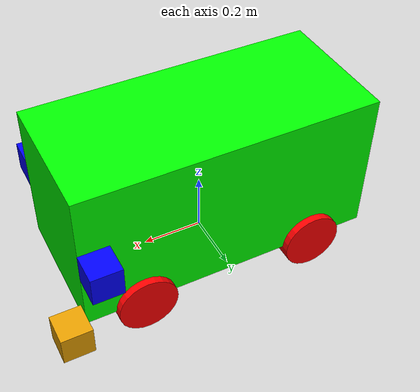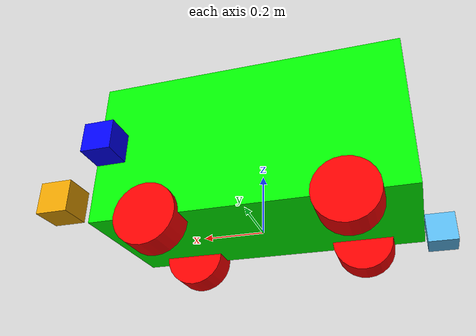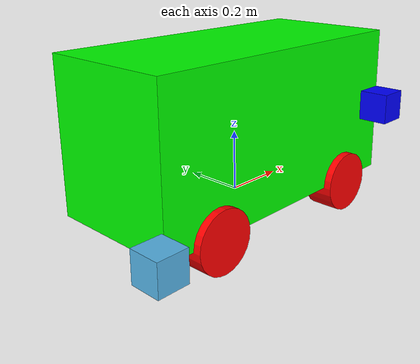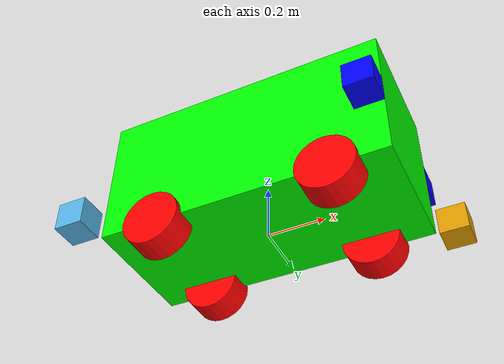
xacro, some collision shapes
<?xml version="1.0"?>
<robot xmlns:xacro="http://www.ros.org/wiki/xacro" name="SweepBOT">

  <xacro:include filename="$(find sweep_bot)/urdf/sensors/camera.xacro"/>
  <xacro:include filename="$(find sweep_bot)/urdf/actuators/wheels.xacro"/>
  <xacro:include filename="$(find sweep_bot)/urdf/sensors/MultiCamera.xacro"/>
  <xacro:include filename="$(find sweep_bot)/urdf/sensors/laser.xacro"/>

  <!-- body -->
  <xacro:property name="chasis_length" value="1.0"/>
  <xacro:property name="chasis_width" value="0.45"/>
  <xacro:property name="chasis_heigth" value="0.5"/>
  <xacro:property name="chasis_mass" value="15.0"/>
  <xacro:property name="ixx" value="${(1/12 * chasis_mass) * ((chasis_width * chasis_width) + (chasis_length * chasis_length))}"/>
  <xacro:property name="iyy" value="${(1/12 * chasis_mass) * ((chasis_heigth * chasis_heigth) + (chasis_length * chasis_length))}"/>
  <xacro:property name="izz" value="${(1/12 * chasis_mass) * ((chasis_heigth * chasis_heigth) + (chasis_width * chasis_width))}"/>

  <link name="chasis_footprint"/>

  <joint name="chasis_footprint_joint" type="fixed">
    <parent link="chasis_footprint"/>
    <child link="chasis"/>
    <origin xyz="0.0 0.0 0.25" rpy="0.0 0.0 0.0"/>
  </joint>

  <link name="chasis">
    <inertial>
      <origin xyz="0.0 0.0 0.0" rpy="0.0 1.57 0.0"/>
      <mass value="${chasis_mass}"/>
      <inertia ixx="${ixx}" ixy="0.0" ixz="0.0" iyy="${iyy}" iyz="0.0" izz="${izz}"/>
    </inertial>
    <visual name="">
      <origin xyz="0.0 0.0 0.0" rpy="0.0 0.0 0.0"/>
      <geometry>
        <box size="${chasis_length} ${chasis_width} ${chasis_heigth}"/>
      </geometry>
      <material name="">
        <color rgba="0.0 1.0 0.0 1.0"/>
      </material>
    </visual>
    <collision>
      <origin xyz="0.0 0.0 0.0" rpy="0.0 0.0 0.0"/>
      <geometry>
        <box size="${chasis_length} ${chasis_width} ${chasis_heigth}"/>
      </geometry>
    </collision>
  </link>
  <gazebo reference='chasis'>
    <material>Gazebo/Orange</material>
  </gazebo>

  <!-- wheels -->
  <xacro:wheel side="left" position="fore" flip='1' alt='1'/>
  <xacro:wheel side="right" position="fore" flip='-1' alt='1'/>
  <xacro:wheel side="left" position="aft" flip='1' alt='-1'/>
  <xacro:wheel side="right" position="aft" flip='-1' alt='-1'/>

  <!-- MULTI-CAMERA -->
  <xacro:sweeper_cams/>

  <!-- LASERS -->
  <xacro:laser_left_alt/>
  <xacro:laser_right_alt/>

  <!-- SKIP STEERING -->
  <gazebo>
    <plugin name="skid_steer_drive_controller" filename="libgazebo_ros_skid_steer_drive.so">
      <updateRate>100.0</updateRate>
      <robotNamespace>/</robotNamespace>
      <leftFrontJoint>body_wheel_left_fore_joint</leftFrontJoint>
      <rightFrontJoint>body_wheel_right_fore_joint</rightFrontJoint>
      <leftRearJoint>body_wheel_left_aft_joint</leftRearJoint>
      <rightRearJoint>body_wheel_right_aft_joint</rightRearJoint>
      <wheelSeparation>0.5</wheelSeparation>
      <wheelDiameter>0.2</wheelDiameter>
      <robotBaseFrame>chasis_footprint</robotBaseFrame>
      <torque>20</torque>
      <topicName>cmd_vel</topicName>
      <broadcastTF>true</broadcastTF>

      <commandTopic> cmd_vel </commandTopic>
      <odometryTopic> odom </odometryTopic>
      <odometryFrame> odom </odometryFrame>
      <covariance_x> 0.000100 </covariance_x>
      <covariance_y> 0.000100 </covariance_y>
      <covariance_yaw> 0.010000 </covariance_yaw>
    </plugin>
  </gazebo>

  <!-- IMU -->
  <gazebo>
    <plugin name="imu_plugin" filename="libgazebo_ros_imu.so">
      <alwaysOn>true</alwaysOn>
      <bodyName>chasis_footprint</bodyName>
      <topicName>imu</topicName>
      <serviceName>imu_service</serviceName>
      <gaussianNoise>0.0</gaussianNoise>
      <updateRate>20.0</updateRate>
    </plugin>
  </gazebo>

</robot>

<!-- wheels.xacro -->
<robot xmlns:xacro="http://www.ros.org/wiki/xacro" name="robot_name">

  <!-- WHEELS -->
  <xacro:property name="wheel_radius" value="0.1"/>
  <xacro:property name="wheel_length" value="0.1"/>
  <xacro:property name="wheel_rpy" value="1.57075 0 0"/>
  <xacro:property name="wheel_mass" value="2.0"/>
  <xacro:property name="ixx" value="${1/12 * wheel_mass * (wheel_length * wheel_length)}"/>
  <xacro:property name="izz" value="${1/12 * wheel_mass * (wheel_length * wheel_length)}"/>

  <xacro:macro name="wheel" params="side position flip alt">
    <xacro:property name="wheel_xyz" value="${alt * 0.3} ${flip * 0.2} -0.25"/>

    <link name="wheel_${side}_${position}">
      <inertial>
        <mass value="${wheel_mass}"/>
        <inertia ixx="${ixx}" ixy="0.0" ixz="0.0" iyy="0.0" iyz="0.0" izz="${izz}"/>
      </inertial>
      <visual name="">
        <origin xyz="0 0 0" rpy="${wheel_rpy}"/>
        <geometry>
          <cylinder radius="${wheel_radius}" length="${wheel_length}"/>
        </geometry>
        <material name="">
          <color rgba="1.0 0.0 0.0 1.0"/>
          <texture filename=""/>
        </material>
      </visual>
      <collision>
        <origin xyz="0 0 0" rpy="${wheel_rpy}"/>
        <geometry>
          <cylinder radius="${wheel_radius}" length="${wheel_length}"/>
        </geometry>
      </collision>
    </link>

    <gazebo reference='"wheel_${side}_${position}'>
      <material>Gazebo/Red</material>
    </gazebo>

    <joint name="body_wheel_${side}_${position}_joint" type="continuous">
      <parent link="chasis"/>
      <child link="wheel_${side}_${position}"/>
      <limit lower="0.0" upper="0.0" effort="0.0" velocity="0.0"/>
      <origin xyz="${alt * 0.3} ${flip * 0.2} -0.25" rpy="0.0 0.0 0.0"/>
      <axis xyz="0.0 1.0 0.0"/>
    </joint>
  </xacro:macro>

</robot>

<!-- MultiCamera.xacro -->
<robot xmlns:xacro="http://www.ros.org/wiki/xacro" name="robot_name">
    <xacro:macro name="sweeper_cams" params="">

        <gazebo reference="left_camera_frame">
            <sensor type="multicamera" name="stereo_camera">
                <update_rate>30.0</update_rate>
                <camera name="left_camera">
                    <horizontal_fov>1.3962634</horizontal_fov>
                    <image>
                        <width>800</width>
                        <height>800</height>
                        <format>R8G8B8</format>
                    </image>
                    <clip>
                        <near>0.02</near>
                        <far>300</far>
                    </clip>
                    <noise>
                        <type>gaussian</type>
                        <mean>0.0</mean>
                        <stddev>0.007</stddev>
                    </noise>
                </camera>
                <camera name="right_camera">
                    <pose>0 -0.07 0 0 0 0</pose>
                    <horizontal_fov>1.3962634</horizontal_fov>
                    <image>
                        <width>800</width>
                        <height>800</height>
                        <format>R8G8B8</format>
                    </image>
                    <clip>
                        <near>0.02</near>
                        <far>300</far>
                    </clip>
                    <noise>
                        <type>gaussian</type>
                        <mean>0.0</mean>
                        <stddev>0.007</stddev>
                    </noise>
                </camera>
                <plugin name="stereo_camera_controller" filename="libgazebo_ros_multicamera.so">
                    <alwaysOn>true</alwaysOn>
                    <updateRate>0.0</updateRate>
                    <cameraName>multisense_sl/camera</cameraName>
                    <imageTopicName>image_raw</imageTopicName>
                    <cameraInfoTopicName>camera_info</cameraInfoTopicName>
                    <frameName>left_camera_optical_frame</frameName>
                    <hackBaseline>0.07</hackBaseline>
                    <distortionK1>0.0</distortionK1>
                    <distortionK2>0.0</distortionK2>
                    <distortionK3>0.0</distortionK3>
                    <distortionT1>0.0</distortionT1>
                    <distortionT2>0.0</distortionT2>
                </plugin>
            </sensor>
        </gazebo>

        <!-- CAMERA LEFT -->

        <link name="left_camera">
            <inertial>
                <origin xyz="0.0 0.0 0.0" rpy="0.0 0.0 0.0"/>
                <mass value="0.0"/>
                <inertia ixx="0.0" ixy="0.0" ixz="0.0" iyy="0.0" iyz="0.0" izz="0.0"/>
            </inertial>
            <visual name="">
                <origin xyz="0.0 0.0 0.0" rpy="0.0 0.0 0.0"/>
                <geometry>
                    <box size="0.1 0.1 0.1"/>
                </geometry>
                <material name="">
                    <color rgba="0.0 0.0 1.0 1.0"/>
                    <texture filename=""/>
                </material>
            </visual>
            <collision>
                <origin xyz="0.0 0.0 0.0" rpy="0.0 0.0 0.0"/>
                <geometry>
                    <box size="0.0 0.0 0.0"/>
                </geometry>
            </collision>
        </link>
        <joint name="left_camera_joint" type="fixed">
            <origin xyz="0.45 -${chasis_heigth / 1.82} 0.0" rpy="0.0 0.0 0.0"/>
            <parent link="chasis"/>
            <child link="left_camera"/>
        </joint>

        <!-- CAMERA RIGHT -->

        <link name="right_camera">
            <inertial>
                <origin xyz="0.0 0.0 0.0" rpy="0.0 0.0 0.0"/>
                <mass value="0.0"/>
                <inertia ixx="0.0" ixy="0.0" ixz="0.0" iyy="0.0" iyz="0.0" izz="0.0"/>
            </inertial>
            <visual name="">
                <origin xyz="0.0 0.0 0.0" rpy="0.0 0.0 0.0"/>
                <geometry>
                    <box size="0.1 0.1 0.1"/>
                </geometry>
                <material name="">
                    <color rgba="0.0 0.0 1.0 1.0"/>
                    <texture filename=""/>
                </material>
            </visual>
            <collision>
                <origin xyz="0.0 0.0 0.0" rpy="0.0 0.0 0.0"/>
                <geometry>
                    <box size="0.0 0.0 0.0"/>
                </geometry>
            </collision>
        </link>
        <joint name="right_camera_joint" type="fixed">
            <origin xyz="0.45 ${chasis_heigth / 1.82} 0.0" rpy="0.0 0.0 0.0"/>
            <parent link="chasis"/>
            <child link="right_camera"/>
        </joint>

    </xacro:macro>
</robot>

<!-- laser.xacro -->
<robot xmlns:xacro="http://www.ros.org/wiki/xacro" name="robot_name">

    <!-- Hokuyo Laser - LEFT -->
    <xacro:macro name="laser_left_alt">
        <gazebo reference="hokuyo_link_left">
            <sensor type="ray" name="head_hokuyo_sensor_left">
            <pose>0 0 0 0 0 0</pose>
            <visualize>true</visualize>
            <update_rate>20</update_rate>
            <ray>
                <scan>
                    <horizontal>
                        <samples>2500</samples>
                        <resolution>1</resolution>
                        <min_angle>-3.14</min_angle>
                        <max_angle>1.57</max_angle>
                    </horizontal>
                </scan>
                <range>
                    <min>0.10</min>
                    <max>4.0</max>
                    <resolution>0.05</resolution>
                </range>
                <noise>
                    <type>gaussian</type>
                    <mean>0.0</mean>
                    <stddev>0.01</stddev>
                </noise>
            </ray>
            <plugin name="gazebo_ros_head_hokuyo_controller" filename="libgazebo_ros_laser.so">
                <topicName>/scan_left</topicName>
                <frameName>hokuyo_link_left</frameName>
            </plugin>
            </sensor>
        </gazebo>

        <link name="hokuyo_link_left">
            <collision>
                <origin xyz="0 0 0" rpy="0 0 0"/>
                <geometry>
                    <box size="0.1 0.1 0.1"/>
                </geometry>
            </collision>

            <visual>
                <origin xyz="0 0 0" rpy="0 0 0"/>
                <geometry>
                    <mesh filename="package://sweep_bot/meshes/hokuyo.dae"/>
                </geometry>
            </visual>

            <inertial>
                <mass value="1e-5" />
                <origin xyz="0 0 0" rpy="0 0 0"/>
                <inertia ixx="1e-6" ixy="0" ixz="0" iyy="1e-6" iyz="0" izz="1e-6" />
            </inertial>
        </link>

        <joint name="laser_joint_left" type="fixed">
            <origin xyz="0.56 0.28 -0.2" rpy="0.0 0.01 ${3.14/2}"/>
            <parent link="chasis"/>
            <child link="hokuyo_link_left"/>
        </joint>
    </xacro:macro>

    <!-- Hokuyo Laser - RIGHT -->
    <xacro:macro name="laser_right_alt">
        <gazebo reference="hokuyo_link_right">
            <sensor type="ray" name="head_hokuyo_sensor_right">
            <pose>0 0 0 0 0 0</pose>
            <visualize>true</visualize>
            <update_rate>20</update_rate>
            <ray>
                <scan>
                    <horizontal>
                        <samples>2500</samples>
                        <resolution>1</resolution>
                        <min_angle>-3.14</min_angle>
                        <max_angle>1.57</max_angle>
                    </horizontal>
                </scan>
                <range>
                    <min>0.10</min>
                    <max>4.0</max>
                    <resolution>0.05</resolution>
                </range>
                <noise>
                    <type>gaussian</type>
                    <mean>0.0</mean>
                    <stddev>0.01</stddev>
                </noise>
            </ray>
            <plugin name="gazebo_ros_head_hokuyo_controller" filename="libgazebo_ros_laser.so">
                <topicName>/scan_right</topicName>
                <frameName>hokuyo_link_right</frameName>
            </plugin>
            </sensor>
        </gazebo>

        <link name="hokuyo_link_right">
            <collision>
                <origin xyz="0 0 0" rpy="0 0 0"/>
                <geometry>
                    <box size="0.1 0.1 0.1"/>
                </geometry>
            </collision>

            <visual>
                <origin xyz="0 0 0" rpy="0 0 0"/>
                <geometry>
                    <mesh filename="package://sweep_bot/meshes/hokuyo.dae"/>
                </geometry>
            </visual>

            <inertial>
                <mass value="1e-5" />
                <origin xyz="0 0 0" rpy="0 0 0"/>
                <inertia ixx="1e-6" ixy="0" ixz="0" iyy="1e-6" iyz="0" izz="1e-6" />
            </inertial>
        </link>

        <joint name="laser_joint_right" type="fixed">
            <origin xyz="-0.56 -0.28 -0.2" rpy="0 0.01 -${3.14/2}"/>
            <parent link="chasis"/>
            <child link="hokuyo_link_right"/>
        </joint>
    </xacro:macro>

</robot>
